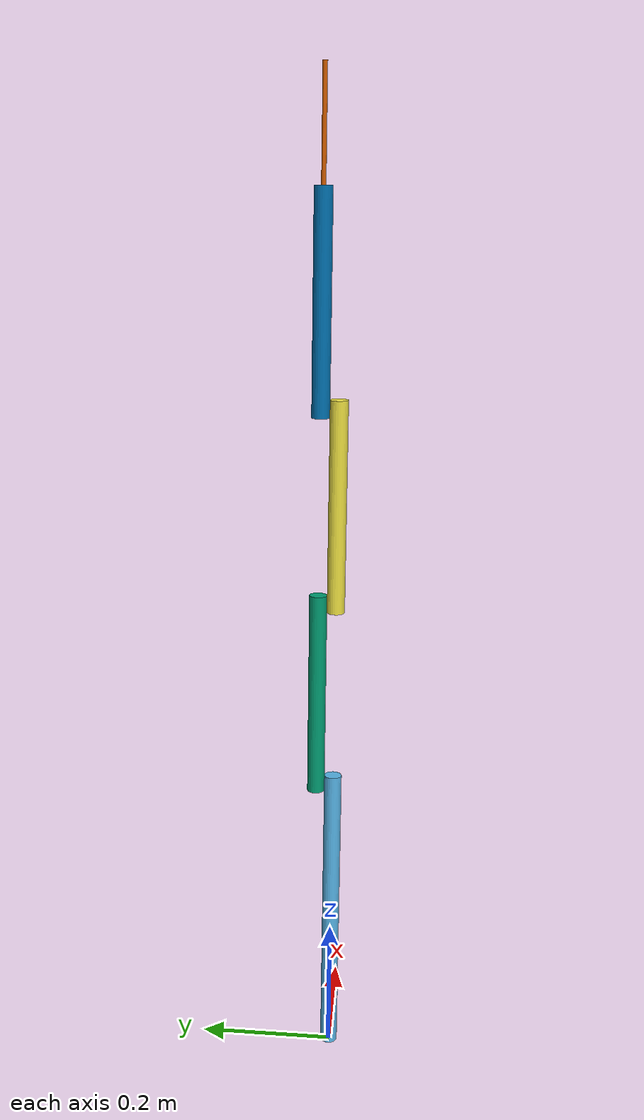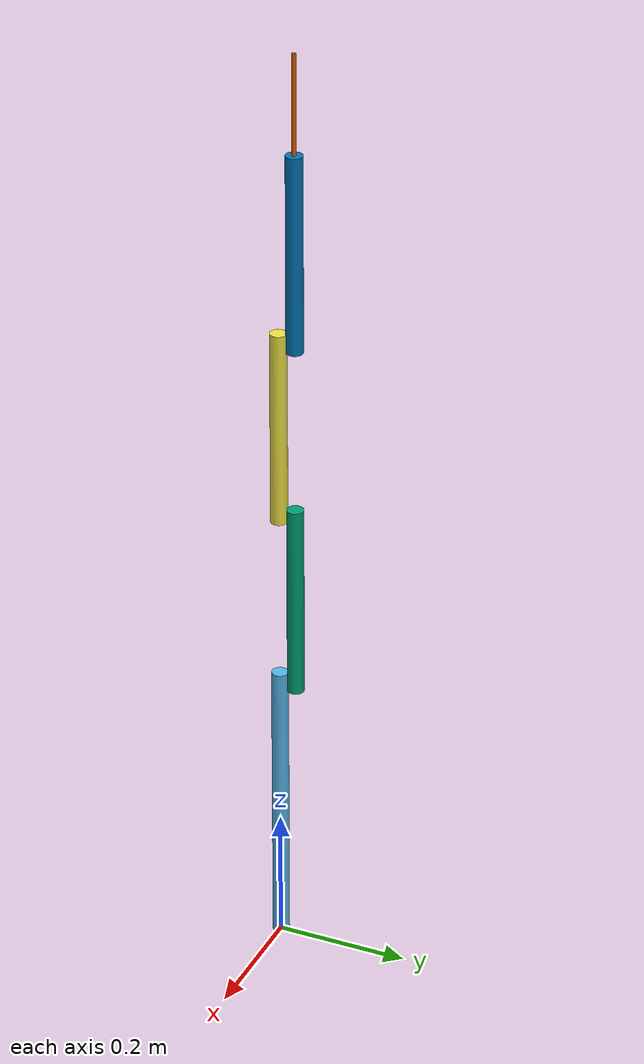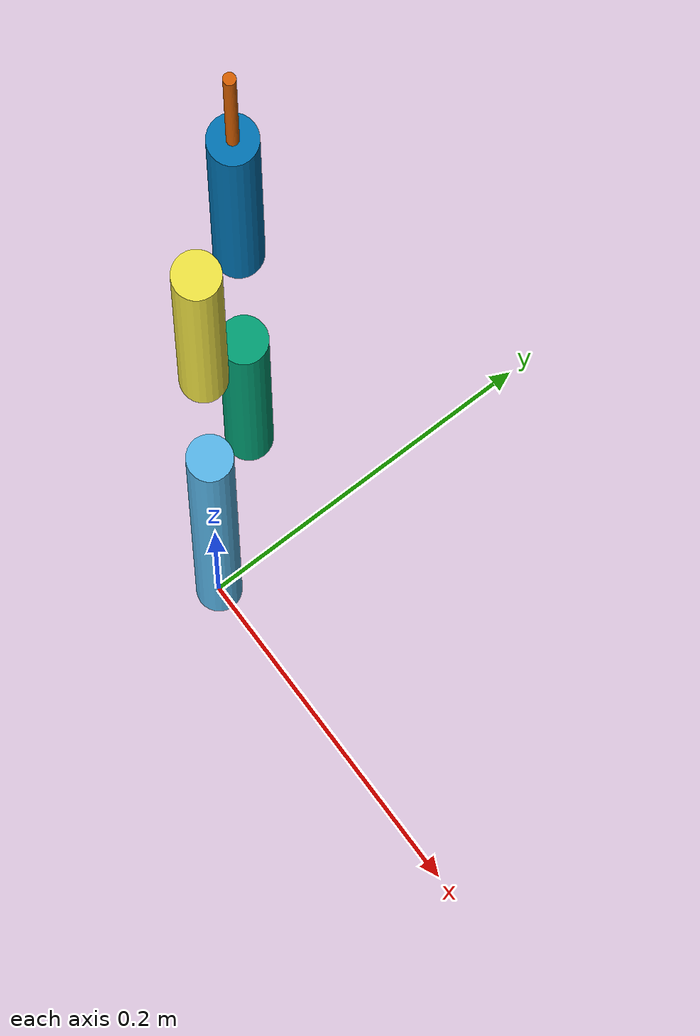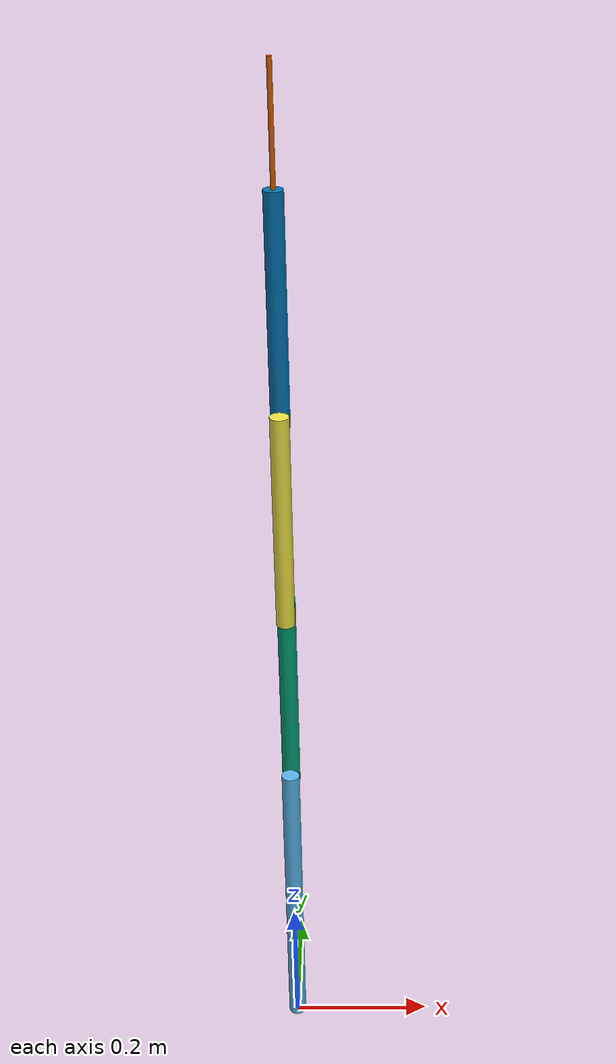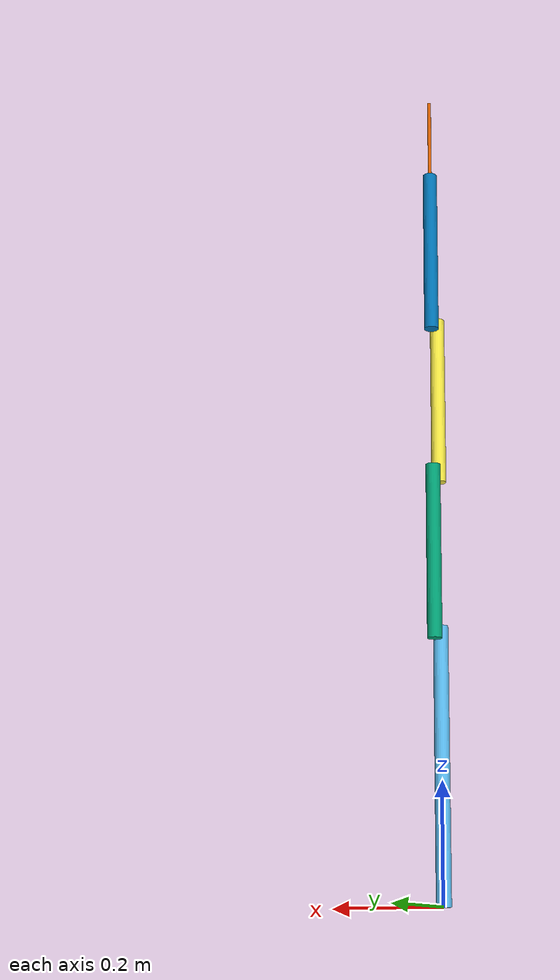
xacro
<?xml version="1.0"?>
<!-- Revolute-Revolute-Revolute Manipulator -->
<robot name="rrrbot" xmlns:xacro="http://www.ros.org/wiki/xacro">

  <!-- Constants for robot dimensions -->
  <xacro:property name="PI" value="3.1415926535897931"/>
  <xacro:property name="mass" value="1" /> <!-- arbitrary value for mass -->
  <xacro:property name="cyl_r" value="0.0127" /> <!-- link radii: 0.5 inches -->
  <xacro:property name="h0" value="0.4572" /> <!-- link0 length: 1.5 ft -->
  <xacro:property name="h1" value="0.3048" /> <!-- link1 length: 1 ft -->
  <xacro:property name="h2" value="0.3048" /> <!-- link2 length: 1 ft -->
  <xacro:property name="h3" value="0.3048" /> <!-- link3 length: 1 ft -->
  <xacro:property name="swab_r" value="0.003175" /> <!-- swab radius: 1/8 inch -->
  <xacro:property name="swab_h" value="0.1524" /> <!-- swab length: 0.5 ft -->
  <xacro:property name="axle_offset" value="0.0125" /> <!-- Space btw top of beam and the each joint -->

  <xacro:include filename="./rrr.gazebo"/>

  <link name="world"/>

  <joint name="joint0" type="fixed">
    <origin xyz="0 0 0" rpy="0 0 0"/>
    <parent link="world"/>
    <child link="link0"/>
  </joint>

  <link name="link0">
    <collision>
      <origin xyz="0 0 ${h0/2}" rpy="0 0 0"/>
      <geometry>
        <cylinder radius="${cyl_r}" length="${h0}"/>
      </geometry>
    </collision>

    <visual>
      <origin xyz="0 0 ${h0/2}" rpy="0 0 0"/>
      <geometry>
        <cylinder radius="${cyl_r}" length="${h0}"/>
      </geometry>
    </visual>

    <inertial>
      <origin xyz="0 0 ${h0/2}" rpy="0 0 0"/>
      <mass value="${mass}"/>
      <inertia
	  ixx="${(3*cyl_r*cyl_r + h0*h0)*mass/12.0}" ixy="0.0" ixz="0.0"
	  iyy="${(3*cyl_r*cyl_r + h0*h0)*mass/12.0}" iyz="0.0"
	  izz="${cyl_r*cyl_r*mass/2.0}"/>
    </inertial>
  </link>

  <joint name="joint1" type="continuous">
    <parent link="link0"/>
    <child link="link1"/>
    <axis xyz="0 1 0"/>
    <origin xyz="0 ${2*cyl_r} ${h0 - axle_offset}" rpy="0 0 0"/>
    <dynamics damping="0.7"/>
  </joint>

  <transmission name="joint1_trans">
    <type>transmission_interface/SimpleTransmission</type>
    <actuator name="joint1_motor">
      <mechanicalReduction>300</mechanicalReduction>
    </actuator>
    <joint name="joint1">
      <hardwareInterface>PositionJointInterface</hardwareInterface>
    </joint>
  </transmission>

  <link name="link1">
    <collision>
      <origin xyz="0 0 ${h1/2 - axle_offset}" rpy="0 0 0"/>
      <geometry>
        <cylinder radius="${cyl_r}" length="${h1}"/>
      </geometry>
    </collision>

    <visual>
      <origin xyz="0 0 ${h1/2 - axle_offset}" rpy="0 0 0"/>
      <geometry>
        <cylinder radius="${cyl_r}" length="${h1}"/>
      </geometry>
    </visual>

    <inertial>
      <origin xyz="0 0 ${h1/2 - axle_offset}" rpy="0 0 0"/>
      <mass value="${mass}"/>
      <inertia
	  ixx="${(3*cyl_r*cyl_r + h1*h1)*mass/12.0}" ixy="0.0" ixz="0.0"
	  iyy="${(3*cyl_r*cyl_r + h1*h1)*mass/12.0}" iyz="0.0"
	  izz="${cyl_r*cyl_r*mass/2.0}"/>
    </inertial>
  </link>

  <joint name="joint2" type="continuous">
    <parent link="link1"/>
    <child link="link2"/>
    <origin xyz="0 ${-2*cyl_r} ${h1 - 2*axle_offset}" rpy="0 0 0"/>
    <axis xyz="0 1 0"/>
    <dynamics damping="0.7"/>
  </joint>

  <transmission name="joint2_trans">
    <type>transmission_interface/SimpleTransmission</type>
    <actuator name="joint2_motor">
      <mechanicalReduction>300</mechanicalReduction>
    </actuator>
    <joint name="joint2">
      <hardwareInterface>PositionJointInterface</hardwareInterface>
    </joint>
  </transmission>

  <link name="link2">
    <collision>
      <origin xyz="0 0 ${h2/2 - axle_offset}" rpy="0 0 0"/>
      <geometry>
        <cylinder radius="${cyl_r}" length="${h2}"/>
      </geometry>
    </collision>

    <visual>
      <origin xyz="0 0 ${h2/2 - axle_offset}" rpy="0 0 0"/>
      <geometry>
        <cylinder radius="${cyl_r}" length="${h2}"/>
      </geometry>
    </visual>

    <inertial>
      <origin xyz="0 0 ${h2/2 - axle_offset}" rpy="0 0 0"/>
      <mass value="${mass}"/>
      <inertia
	  ixx="${(3*cyl_r*cyl_r + h2*h2)*mass/12.0}" ixy="0.0" ixz="0.0"
	  iyy="${(3*cyl_r*cyl_r + h2*h2)*mass/12.0}" iyz="0.0"
	  izz="${cyl_r*cyl_r*mass/2.0}"/>
    </inertial>
  </link>

  <joint name="joint3" type="continuous">
    <parent link="link2"/>
    <child link="link3"/>
    <origin xyz="0 ${2*cyl_r} ${h2 - 2*axle_offset}" rpy="0 0 0"/>
    <axis xyz="0 1 0"/>
    <dynamics damping="0.7"/>
  </joint>

  <transmission name="joint3_trans">
    <type>transmission_interface/SimpleTransmission</type>
    <actuator name="joint3_motor">
      <mechanicalReduction>300</mechanicalReduction>
    </actuator>
    <joint name="joint3">
      <hardwareInterface>PositionJointInterface</hardwareInterface>
    </joint>
  </transmission>

  <link name="link3">
    <collision>
      <origin xyz="0 0 ${h3/2 - axle_offset}" rpy="0 0 0"/>
      <geometry>
        <cylinder radius="${cyl_r}" length="${h3}"/>
      </geometry>
    </collision>

    <visual>
      <origin xyz="0 0 ${h3/2 - axle_offset}" rpy="0 0 0"/>
      <geometry>
        <cylinder radius="${cyl_r}" length="${h3}"/>
      </geometry>
    </visual>

    <inertial>
      <origin xyz="0 0 ${h3/2 - axle_offset}" rpy="0 0 0"/>
      <mass value="${mass}"/>
      <inertia
	  ixx="${(3*cyl_r*cyl_r + h3*h3)*mass/12.0}" ixy="0.0" ixz="0.0"
	  iyy="${(3*cyl_r*cyl_r + h3*h3)*mass/12.0}" iyz="0.0"
	  izz="${cyl_r*cyl_r*mass/2.0}"/>
    </inertial>
  </link>

  <joint name="joint4" type="continuous">
    <parent link="link3"/>
    <origin xyz="0 0 ${h3 - axle_offset}" rpy="0 0 0"/>
    <axis xyz="0 0 1"/>
    <child link="swab_link"/>
  </joint>

  <transmission name="joint4_trans">
    <type>transmission_interface/SimpleTransmission</type>
    <actuator name="joint4_motor">
      <mechanicalReduction>300</mechanicalReduction>
    </actuator>
    <joint name="joint4">
      <hardwareInterface>PositionJointInterface</hardwareInterface>
    </joint>
  </transmission>

  <link name="swab_link">
    <collision>
      <origin xyz="0 0 ${swab_h/2}" rpy="0 0 0"/>
      <geometry>
        <cylinder radius="${swab_r}" length="${swab_h}"/>
      </geometry>
    </collision>

    <visual>
      <origin xyz="0 0 ${swab_h/2}" rpy="0 0 0"/>
      <geometry>
        <cylinder radius="${swab_r}" length="${swab_h}"/>
      </geometry>
    </visual>

    <inertial>
      <origin xyz="0 0 ${swab_h/2}" rpy="0 0 0"/>
      <mass value="${mass}"/>
      <inertia
	  ixx="${(3*swab_r*swab_r + swab_h*swab_h)*mass/12.0}" ixy="0.0" ixz="0.0"
	  iyy="${(3*swab_r*swab_r + swab_h*swab_h)*mass/12.0}" iyz="0.0"
	  izz="${swab_r*swab_r*mass/2.0}"/>
    </inertial>
  </link>
</robot>
